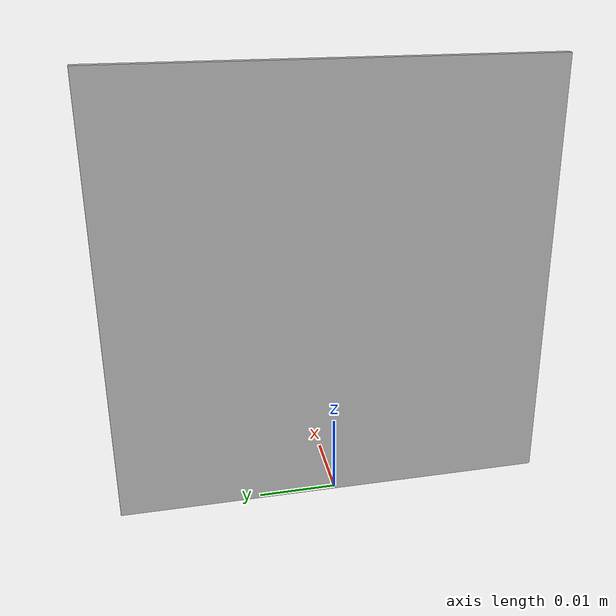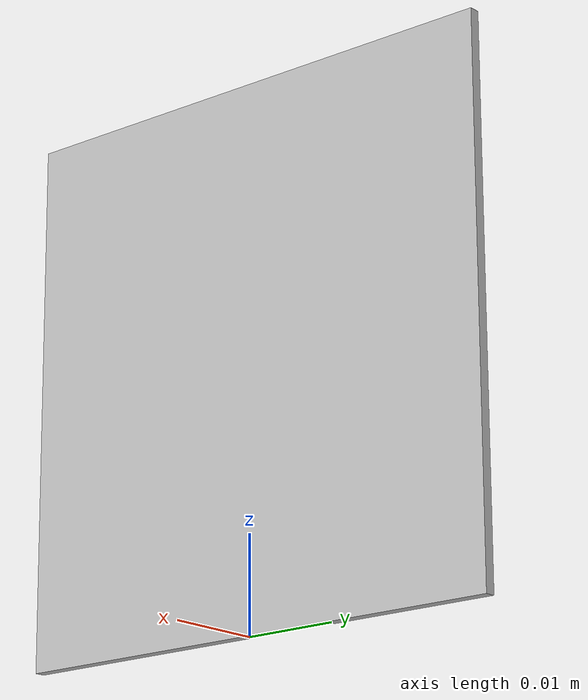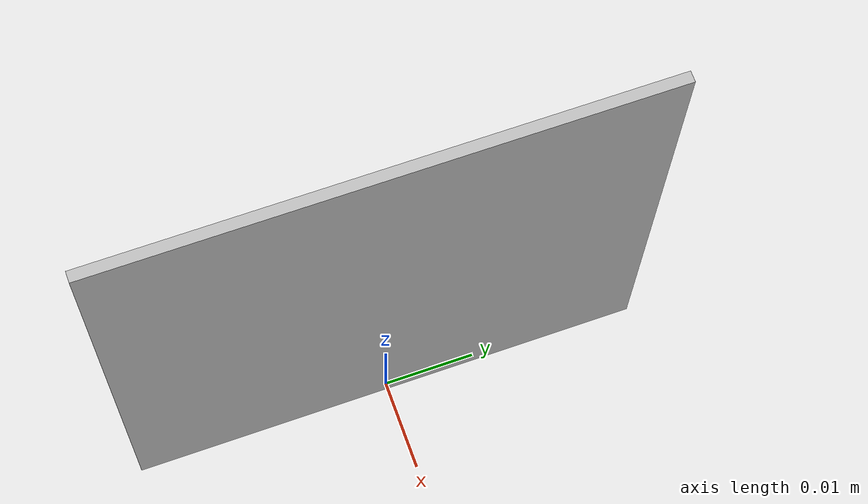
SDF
<?xml version="1.0" ?><sdf version="1.4">
  <model name="Marker16">
    <static>true</static>
    <link name="link">
      <visual name="visual">
        <geometry>
          <mesh>
            <uri>model://marker16/meshes/Marker16.dae</uri>
          <scale>0.112 0.112 0.112</scale></mesh>
        </geometry>
      </visual>
    </link>
  </model>
</sdf>
